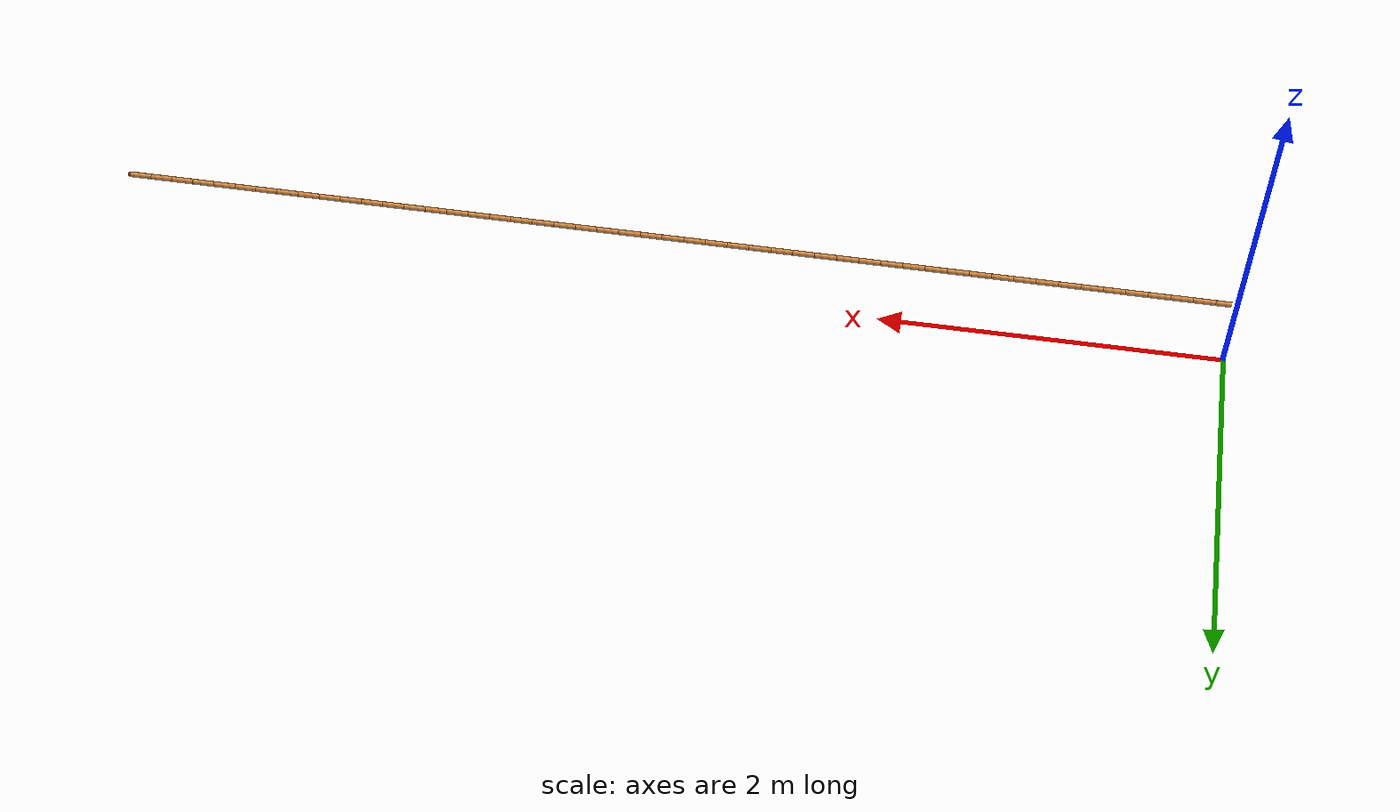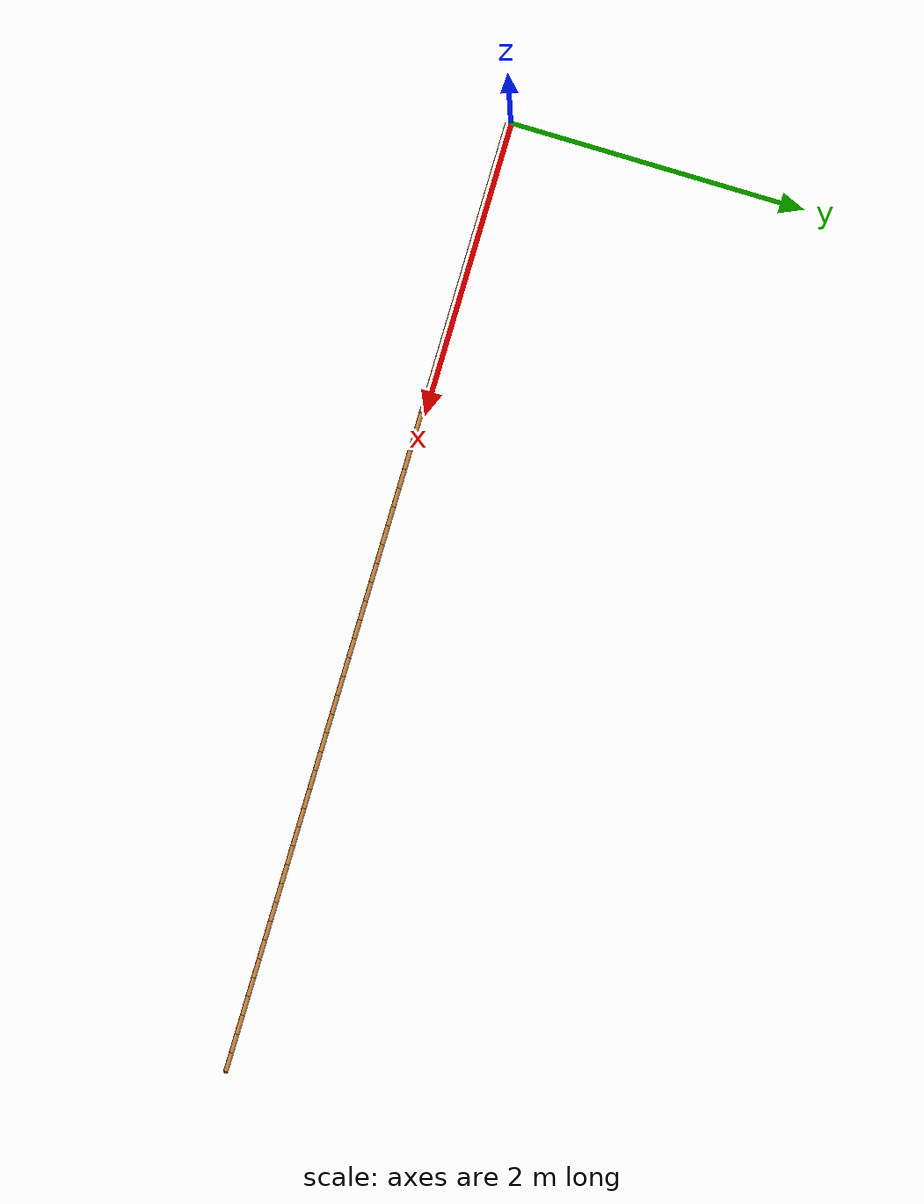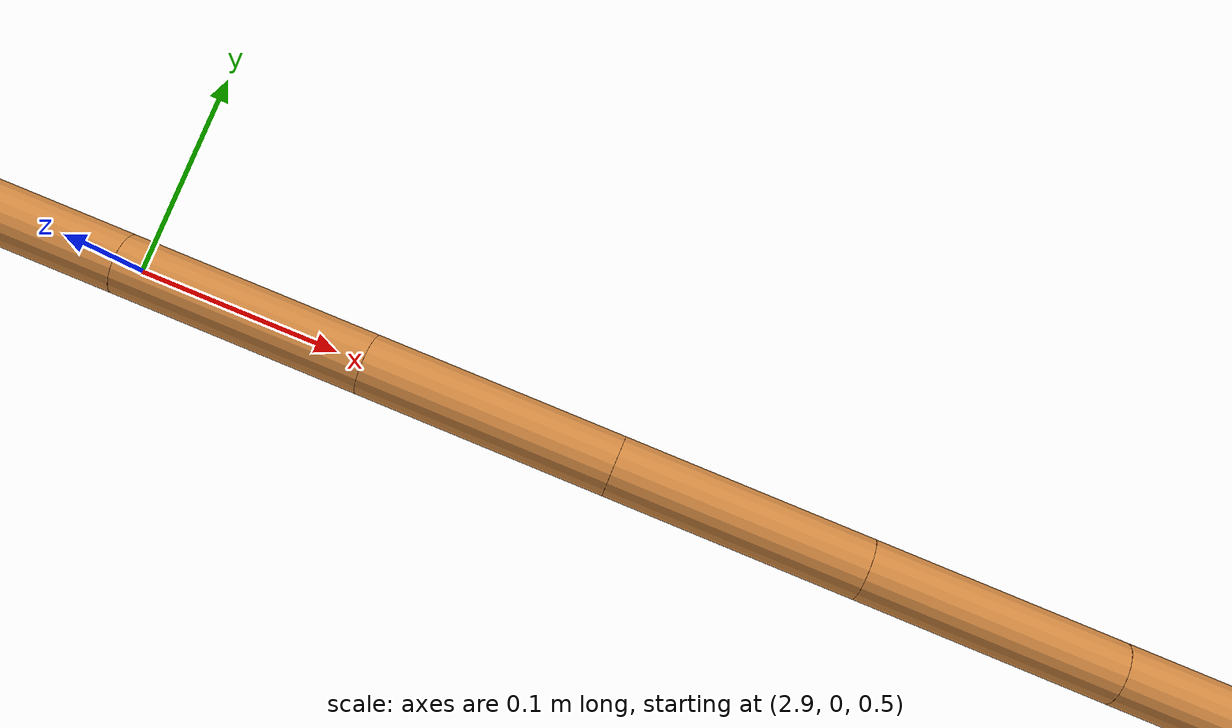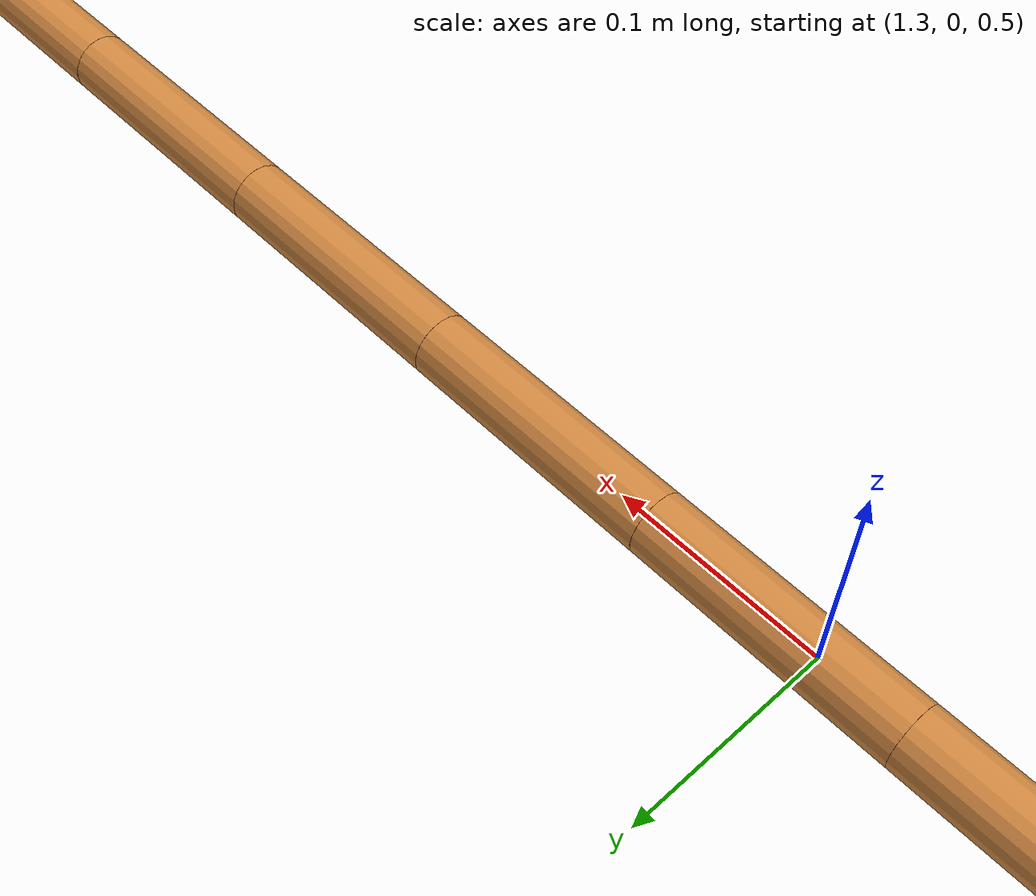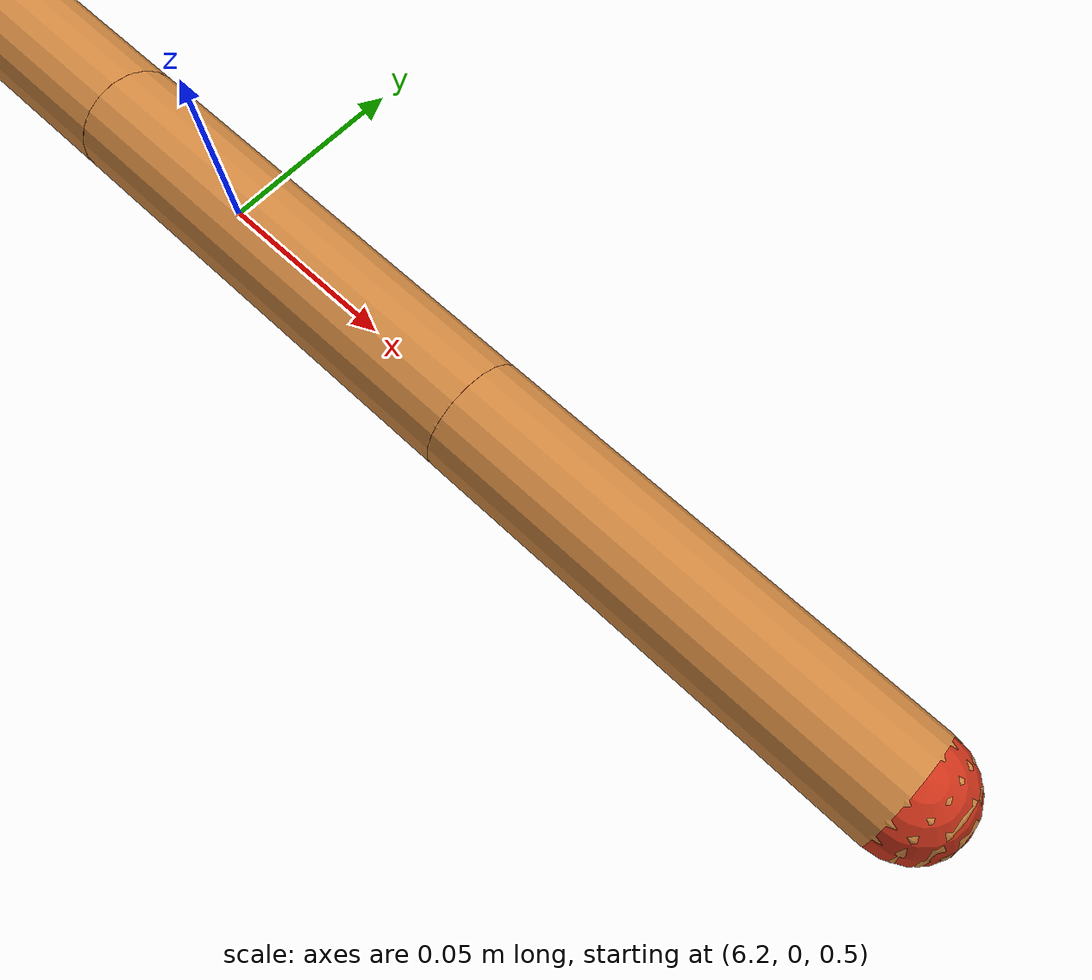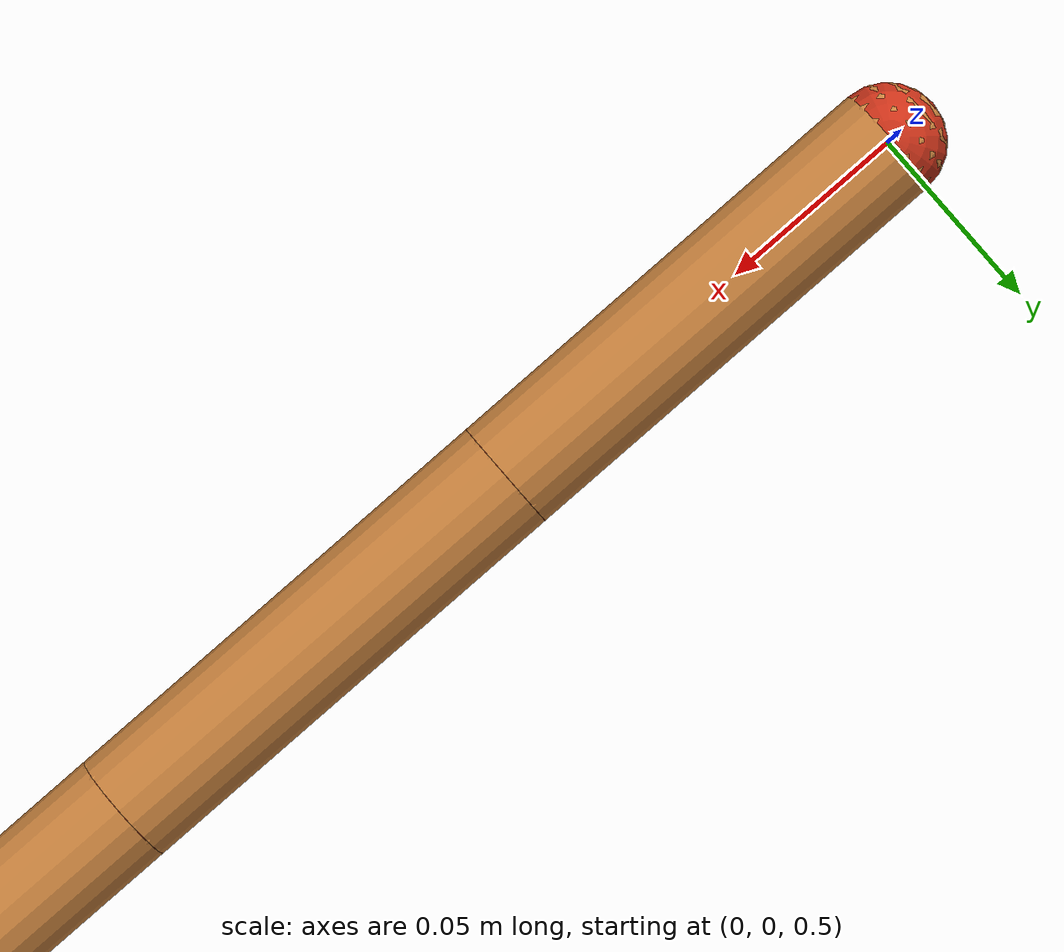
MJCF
<mujoco model="stiff-rope">
  <worldbody>
    <body name="stiffrope" pos="6.346017160251383 0.0 0.5" quat="1 0 0 0">
      <site name="ft_rope" pos="0 0 0" size="0.01 0.01 0.01" rgba="1 0 0 1" type="sphere" group="1" />
      <body name="r_joint0_body" pos="0.06283185307179587 0 0" quat="1.0 0.0 0.0 0.0">
        <site name="r_joint0_site" type="sphere" size="0.0001 0.0001 0.0001"/>
        <geom name="r_joint0_geom" conaffinity="0" contype="0" type="sphere" size="0.015 0.015 0.015" mass="0.02513274122871835" rgba=".8 .2 .1 1" friction="1 0.005 0.0001"/>
      </body>
      <body name="r_link1_body" pos="0.0 0 0" quat="1.0 0.0 0.0 0.0">
        <body name="r_joint1_body" pos="-0.06283185307179587 0 0">
          <site name="r_joint1_site" type="sphere" size="0.0001 0.0001 0.0001"/>
          <geom name="r_joint1_geom" conaffinity="0" contype="0" type="sphere" size="0.015 0.015 0.015" mass="0.02513274122871835" rgba=".8 .2 .1 1" friction="1 0.005 0.0001"/>
        </body>
        <geom name="r_link1_geom" quat="0.707 0. 0.707 0." type="capsule" size="0.0150 0.0628" mass="0.22619467105846514" rgba="0.803921568627451 0.5215686274509804 0.24705882352941178 1.0" friction="1 0.005 0.0001" solref="0.01 1" contype="1" conaffinity="1" condim="1"/>
        <site name="r_link1_site" type="sphere" size="0.0001 0.0001 0.0001"/>
      </body>
    </body>
    <body name="r_link2_body" pos="6.220353454107791 0.0 0.5" quat="1.0 0.0 0.0 0.0">
      <freejoint name="freejoint2"/>
      <body name="r_joint2_body" pos="-0.06283185307179587 0 0">
        <site name="r_joint2_site" type="sphere" size="0.0001 0.0001 0.0001"/>
        <geom name="r_joint2_geom" conaffinity="0" contype="0" type="sphere" size="0.015 0.015 0.015" mass="0.02513274122871835" rgba=".8 .2 .1 1" friction="1 0.005 0.0001"/>
      </body>
      <geom name="r_link2_geom" quat="0.707 0. 0.707 0." type="capsule" size="0.0150 0.0628" mass="0.22619467105846514" rgba="0.803921568627451 0.5215686274509804 0.24705882352941178 1.0" friction="1 0.005 0.0001" solref="0.01 1" contype="1" conaffinity="1" condim="1"/>
      <site name="r_link2_site" type="sphere" size="0.0001 0.0001 0.0001"/>
    </body>
    <body name="r_link3_body" pos="6.094689747964199 0.0 0.5" quat="1.0 0.0 0.0 0.0">
      <freejoint name="freejoint3"/>
      <body name="r_joint3_body" pos="-0.06283185307179587 0 0">
        <site name="r_joint3_site" type="sphere" size="0.0001 0.0001 0.0001"/>
        <geom name="r_joint3_geom" conaffinity="0" contype="0" type="sphere" size="0.015 0.015 0.015" mass="0.02513274122871835" rgba=".8 .2 .1 1" friction="1 0.005 0.0001"/>
      </body>
      <geom name="r_link3_geom" quat="0.707 0. 0.707 0." type="capsule" size="0.0150 0.0628" mass="0.22619467105846514" rgba="0.803921568627451 0.5215686274509804 0.24705882352941178 1.0" friction="1 0.005 0.0001" solref="0.01 1" contype="1" conaffinity="1" condim="1"/>
      <site name="r_link3_site" type="sphere" size="0.0001 0.0001 0.0001"/>
    </body>
    <body name="r_link4_body" pos="5.969026041820608 0.0 0.5" quat="1.0 0.0 0.0 0.0">
      <freejoint name="freejoint4"/>
      <body name="r_joint4_body" pos="-0.06283185307179587 0 0">
        <site name="r_joint4_site" type="sphere" size="0.0001 0.0001 0.0001"/>
        <geom name="r_joint4_geom" conaffinity="0" contype="0" type="sphere" size="0.015 0.015 0.015" mass="0.02513274122871835" rgba=".8 .2 .1 1" friction="1 0.005 0.0001"/>
      </body>
      <geom name="r_link4_geom" quat="0.707 0. 0.707 0." type="capsule" size="0.0150 0.0628" mass="0.22619467105846514" rgba="0.803921568627451 0.5215686274509804 0.24705882352941178 1.0" friction="1 0.005 0.0001" solref="0.01 1" contype="1" conaffinity="1" condim="1"/>
      <site name="r_link4_site" type="sphere" size="0.0001 0.0001 0.0001"/>
    </body>
    <body name="r_link5_body" pos="5.843362335677016 0.0 0.5" quat="1.0 0.0 0.0 0.0">
      <freejoint name="freejoint5"/>
      <body name="r_joint5_body" pos="-0.06283185307179587 0 0">
        <site name="r_joint5_site" type="sphere" size="0.0001 0.0001 0.0001"/>
        <geom name="r_joint5_geom" conaffinity="0" contype="0" type="sphere" size="0.015 0.015 0.015" mass="0.02513274122871835" rgba=".8 .2 .1 1" friction="1 0.005 0.0001"/>
      </body>
      <geom name="r_link5_geom" quat="0.707 0. 0.707 0." type="capsule" size="0.0150 0.0628" mass="0.22619467105846514" rgba="0.803921568627451 0.5215686274509804 0.24705882352941178 1.0" friction="1 0.005 0.0001" solref="0.01 1" contype="1" conaffinity="1" condim="1"/>
      <site name="r_link5_site" type="sphere" size="0.0001 0.0001 0.0001"/>
    </body>
    <body name="r_link6_body" pos="5.717698629533424 0.0 0.5" quat="1.0 0.0 0.0 0.0">
      <freejoint name="freejoint6"/>
      <body name="r_joint6_body" pos="-0.06283185307179587 0 0">
        <site name="r_joint6_site" type="sphere" size="0.0001 0.0001 0.0001"/>
        <geom name="r_joint6_geom" conaffinity="0" contype="0" type="sphere" size="0.015 0.015 0.015" mass="0.02513274122871835" rgba=".8 .2 .1 1" friction="1 0.005 0.0001"/>
      </body>
      <geom name="r_link6_geom" quat="0.707 0. 0.707 0." type="capsule" size="0.0150 0.0628" mass="0.22619467105846514" rgba="0.803921568627451 0.5215686274509804 0.24705882352941178 1.0" friction="1 0.005 0.0001" solref="0.01 1" contype="1" conaffinity="1" condim="1"/>
      <site name="r_link6_site" type="sphere" size="0.0001 0.0001 0.0001"/>
    </body>
    <body name="r_link7_body" pos="5.592034923389832 0.0 0.5" quat="1.0 0.0 0.0 0.0">
      <freejoint name="freejoint7"/>
      <body name="r_joint7_body" pos="-0.06283185307179587 0 0">
        <site name="r_joint7_site" type="sphere" size="0.0001 0.0001 0.0001"/>
        <geom name="r_joint7_geom" conaffinity="0" contype="0" type="sphere" size="0.015 0.015 0.015" mass="0.02513274122871835" rgba=".8 .2 .1 1" friction="1 0.005 0.0001"/>
      </body>
      <geom name="r_link7_geom" quat="0.707 0. 0.707 0." type="capsule" size="0.0150 0.0628" mass="0.22619467105846514" rgba="0.803921568627451 0.5215686274509804 0.24705882352941178 1.0" friction="1 0.005 0.0001" solref="0.01 1" contype="1" conaffinity="1" condim="1"/>
      <site name="r_link7_site" type="sphere" size="0.0001 0.0001 0.0001"/>
    </body>
    <body name="r_link8_body" pos="5.46637121724624 0.0 0.5" quat="1.0 0.0 0.0 0.0">
      <freejoint name="freejoint8"/>
      <body name="r_joint8_body" pos="-0.06283185307179587 0 0">
        <site name="r_joint8_site" type="sphere" size="0.0001 0.0001 0.0001"/>
        <geom name="r_joint8_geom" conaffinity="0" contype="0" type="sphere" size="0.015 0.015 0.015" mass="0.02513274122871835" rgba=".8 .2 .1 1" friction="1 0.005 0.0001"/>
      </body>
      <geom name="r_link8_geom" quat="0.707 0. 0.707 0." type="capsule" size="0.0150 0.0628" mass="0.22619467105846514" rgba="0.803921568627451 0.5215686274509804 0.24705882352941178 1.0" friction="1 0.005 0.0001" solref="0.01 1" contype="1" conaffinity="1" condim="1"/>
      <site name="r_link8_site" type="sphere" size="0.0001 0.0001 0.0001"/>
    </body>
    <body name="r_link9_body" pos="5.340707511102648 0.0 0.5" quat="1.0 0.0 0.0 0.0">
      <freejoint name="freejoint9"/>
      <body name="r_joint9_body" pos="-0.06283185307179587 0 0">
        <site name="r_joint9_site" type="sphere" size="0.0001 0.0001 0.0001"/>
        <geom name="r_joint9_geom" conaffinity="0" contype="0" type="sphere" size="0.015 0.015 0.015" mass="0.02513274122871835" rgba=".8 .2 .1 1" friction="1 0.005 0.0001"/>
      </body>
      <geom name="r_link9_geom" quat="0.707 0. 0.707 0." type="capsule" size="0.0150 0.0628" mass="0.22619467105846514" rgba="0.803921568627451 0.5215686274509804 0.24705882352941178 1.0" friction="1 0.005 0.0001" solref="0.01 1" contype="1" conaffinity="1" condim="1"/>
      <site name="r_link9_site" type="sphere" size="0.0001 0.0001 0.0001"/>
    </body>
    <body name="r_link10_body" pos="5.215043804959057 0.0 0.5" quat="1.0 0.0 0.0 0.0">
      <freejoint name="freejoint10"/>
      <body name="r_joint10_body" pos="-0.06283185307179587 0 0">
        <site name="r_joint10_site" type="sphere" size="0.0001 0.0001 0.0001"/>
        <geom name="r_joint10_geom" conaffinity="0" contype="0" type="sphere" size="0.015 0.015 0.015" mass="0.02513274122871835" rgba=".8 .2 .1 1" friction="1 0.005 0.0001"/>
      </body>
      <geom name="r_link10_geom" quat="0.707 0. 0.707 0." type="capsule" size="0.0150 0.0628" mass="0.22619467105846514" rgba="0.803921568627451 0.5215686274509804 0.24705882352941178 1.0" friction="1 0.005 0.0001" solref="0.01 1" contype="1" conaffinity="1" condim="1"/>
      <site name="r_link10_site" type="sphere" size="0.0001 0.0001 0.0001"/>
    </body>
    <body name="r_link11_body" pos="5.089380098815465 0.0 0.5" quat="1.0 0.0 0.0 0.0">
      <freejoint name="freejoint11"/>
      <body name="r_joint11_body" pos="-0.06283185307179587 0 0">
        <site name="r_joint11_site" type="sphere" size="0.0001 0.0001 0.0001"/>
        <geom name="r_joint11_geom" conaffinity="0" contype="0" type="sphere" size="0.015 0.015 0.015" mass="0.02513274122871835" rgba=".8 .2 .1 1" friction="1 0.005 0.0001"/>
      </body>
      <geom name="r_link11_geom" quat="0.707 0. 0.707 0." type="capsule" size="0.0150 0.0628" mass="0.22619467105846514" rgba="0.803921568627451 0.5215686274509804 0.24705882352941178 1.0" friction="1 0.005 0.0001" solref="0.01 1" contype="1" conaffinity="1" condim="1"/>
      <site name="r_link11_site" type="sphere" size="0.0001 0.0001 0.0001"/>
    </body>
    <body name="r_link12_body" pos="4.9637163926718735 0.0 0.5" quat="1.0 0.0 0.0 0.0">
      <freejoint name="freejoint12"/>
      <body name="r_joint12_body" pos="-0.06283185307179587 0 0">
        <site name="r_joint12_site" type="sphere" size="0.0001 0.0001 0.0001"/>
        <geom name="r_joint12_geom" conaffinity="0" contype="0" type="sphere" size="0.015 0.015 0.015" mass="0.02513274122871835" rgba=".8 .2 .1 1" friction="1 0.005 0.0001"/>
      </body>
      <geom name="r_link12_geom" quat="0.707 0. 0.707 0." type="capsule" size="0.0150 0.0628" mass="0.22619467105846514" rgba="0.803921568627451 0.5215686274509804 0.24705882352941178 1.0" friction="1 0.005 0.0001" solref="0.01 1" contype="1" conaffinity="1" condim="1"/>
      <site name="r_link12_site" type="sphere" size="0.0001 0.0001 0.0001"/>
    </body>
    <body name="r_link13_body" pos="4.838052686528282 0.0 0.5" quat="1.0 0.0 0.0 0.0">
      <freejoint name="freejoint13"/>
      <body name="r_joint13_body" pos="-0.06283185307179587 0 0">
        <site name="r_joint13_site" type="sphere" size="0.0001 0.0001 0.0001"/>
        <geom name="r_joint13_geom" conaffinity="0" contype="0" type="sphere" size="0.015 0.015 0.015" mass="0.02513274122871835" rgba=".8 .2 .1 1" friction="1 0.005 0.0001"/>
      </body>
      <geom name="r_link13_geom" quat="0.707 0. 0.707 0." type="capsule" size="0.0150 0.0628" mass="0.22619467105846514" rgba="0.803921568627451 0.5215686274509804 0.24705882352941178 1.0" friction="1 0.005 0.0001" solref="0.01 1" contype="1" conaffinity="1" condim="1"/>
      <site name="r_link13_site" type="sphere" size="0.0001 0.0001 0.0001"/>
    </body>
    <body name="r_link14_body" pos="4.71238898038469 0.0 0.5" quat="1.0 0.0 0.0 0.0">
      <freejoint name="freejoint14"/>
      <body name="r_joint14_body" pos="-0.06283185307179587 0 0">
        <site name="r_joint14_site" type="sphere" size="0.0001 0.0001 0.0001"/>
        <geom name="r_joint14_geom" conaffinity="0" contype="0" type="sphere" size="0.015 0.015 0.015" mass="0.02513274122871835" rgba=".8 .2 .1 1" friction="1 0.005 0.0001"/>
      </body>
      <geom name="r_link14_geom" quat="0.707 0. 0.707 0." type="capsule" size="0.0150 0.0628" mass="0.22619467105846514" rgba="0.803921568627451 0.5215686274509804 0.24705882352941178 1.0" friction="1 0.005 0.0001" solref="0.01 1" contype="1" conaffinity="1" condim="1"/>
      <site name="r_link14_site" type="sphere" size="0.0001 0.0001 0.0001"/>
    </body>
    <body name="r_link15_body" pos="4.586725274241099 0.0 0.5" quat="1.0 0.0 0.0 0.0">
      <freejoint name="freejoint15"/>
      <body name="r_joint15_body" pos="-0.06283185307179587 0 0">
        <site name="r_joint15_site" type="sphere" size="0.0001 0.0001 0.0001"/>
        <geom name="r_joint15_geom" conaffinity="0" contype="0" type="sphere" size="0.015 0.015 0.015" mass="0.02513274122871835" rgba=".8 .2 .1 1" friction="1 0.005 0.0001"/>
      </body>
      <geom name="r_link15_geom" quat="0.707 0. 0.707 0." type="capsule" size="0.0150 0.0628" mass="0.22619467105846514" rgba="0.803921568627451 0.5215686274509804 0.24705882352941178 1.0" friction="1 0.005 0.0001" solref="0.01 1" contype="1" conaffinity="1" condim="1"/>
      <site name="r_link15_site" type="sphere" size="0.0001 0.0001 0.0001"/>
    </body>
    <body name="r_link16_body" pos="4.461061568097507 0.0 0.5" quat="1.0 0.0 0.0 0.0">
      <freejoint name="freejoint16"/>
      <body name="r_joint16_body" pos="-0.06283185307179587 0 0">
        <site name="r_joint16_site" type="sphere" size="0.0001 0.0001 0.0001"/>
        <geom name="r_joint16_geom" conaffinity="0" contype="0" type="sphere" size="0.015 0.015 0.015" mass="0.02513274122871835" rgba=".8 .2 .1 1" friction="1 0.005 0.0001"/>
      </body>
      <geom name="r_link16_geom" quat="0.707 0. 0.707 0." type="capsule" size="0.0150 0.0628" mass="0.22619467105846514" rgba="0.803921568627451 0.5215686274509804 0.24705882352941178 1.0" friction="1 0.005 0.0001" solref="0.01 1" contype="1" conaffinity="1" condim="1"/>
      <site name="r_link16_site" type="sphere" size="0.0001 0.0001 0.0001"/>
    </body>
    <body name="r_link17_body" pos="4.335397861953915 0.0 0.5" quat="1.0 0.0 0.0 0.0">
      <freejoint name="freejoint17"/>
      <body name="r_joint17_body" pos="-0.06283185307179587 0 0">
        <site name="r_joint17_site" type="sphere" size="0.0001 0.0001 0.0001"/>
        <geom name="r_joint17_geom" conaffinity="0" contype="0" type="sphere" size="0.015 0.015 0.015" mass="0.02513274122871835" rgba=".8 .2 .1 1" friction="1 0.005 0.0001"/>
      </body>
      <geom name="r_link17_geom" quat="0.707 0. 0.707 0." type="capsule" size="0.0150 0.0628" mass="0.22619467105846514" rgba="0.803921568627451 0.5215686274509804 0.24705882352941178 1.0" friction="1 0.005 0.0001" solref="0.01 1" contype="1" conaffinity="1" condim="1"/>
      <site name="r_link17_site" type="sphere" size="0.0001 0.0001 0.0001"/>
    </body>
    <body name="r_link18_body" pos="4.209734155810323 0.0 0.5" quat="1.0 0.0 0.0 0.0">
      <freejoint name="freejoint18"/>
      <body name="r_joint18_body" pos="-0.06283185307179587 0 0">
        <site name="r_joint18_site" type="sphere" size="0.0001 0.0001 0.0001"/>
        <geom name="r_joint18_geom" conaffinity="0" contype="0" type="sphere" size="0.015 0.015 0.015" mass="0.02513274122871835" rgba=".8 .2 .1 1" friction="1 0.005 0.0001"/>
      </body>
      <geom name="r_link18_geom" quat="0.707 0. 0.707 0." type="capsule" size="0.0150 0.0628" mass="0.22619467105846514" rgba="0.803921568627451 0.5215686274509804 0.24705882352941178 1.0" friction="1 0.005 0.0001" solref="0.01 1" contype="1" conaffinity="1" condim="1"/>
      <site name="r_link18_site" type="sphere" size="0.0001 0.0001 0.0001"/>
    </body>
    <body name="r_link19_body" pos="4.084070449666731 0.0 0.5" quat="1.0 0.0 0.0 0.0">
      <freejoint name="freejoint19"/>
      <body name="r_joint19_body" pos="-0.06283185307179587 0 0">
        <site name="r_joint19_site" type="sphere" size="0.0001 0.0001 0.0001"/>
        <geom name="r_joint19_geom" conaffinity="0" contype="0" type="sphere" size="0.015 0.015 0.015" mass="0.02513274122871835" rgba=".8 .2 .1 1" friction="1 0.005 0.0001"/>
      </body>
      <geom name="r_link19_geom" quat="0.707 0. 0.707 0." type="capsule" size="0.0150 0.0628" mass="0.22619467105846514" rgba="0.803921568627451 0.5215686274509804 0.24705882352941178 1.0" friction="1 0.005 0.0001" solref="0.01 1" contype="1" conaffinity="1" condim="1"/>
      <site name="r_link19_site" type="sphere" size="0.0001 0.0001 0.0001"/>
    </body>
    <body name="r_link20_body" pos="3.9584067435231396 0.0 0.5" quat="1.0 0.0 0.0 0.0">
      <freejoint name="freejoint20"/>
      <body name="r_joint20_body" pos="-0.06283185307179587 0 0">
        <site name="r_joint20_site" type="sphere" size="0.0001 0.0001 0.0001"/>
        <geom name="r_joint20_geom" conaffinity="0" contype="0" type="sphere" size="0.015 0.015 0.015" mass="0.02513274122871835" rgba=".8 .2 .1 1" friction="1 0.005 0.0001"/>
      </body>
      <geom name="r_link20_geom" quat="0.707 0. 0.707 0." type="capsule" size="0.0150 0.0628" mass="0.22619467105846514" rgba="0.803921568627451 0.5215686274509804 0.24705882352941178 1.0" friction="1 0.005 0.0001" solref="0.01 1" contype="1" conaffinity="1" condim="1"/>
      <site name="r_link20_site" type="sphere" size="0.0001 0.0001 0.0001"/>
    </body>
    <body name="r_link21_body" pos="3.832743037379548 0.0 0.5" quat="1.0 0.0 0.0 0.0">
      <freejoint name="freejoint21"/>
      <body name="r_joint21_body" pos="-0.06283185307179587 0 0">
        <site name="r_joint21_site" type="sphere" size="0.0001 0.0001 0.0001"/>
        <geom name="r_joint21_geom" conaffinity="0" contype="0" type="sphere" size="0.015 0.015 0.015" mass="0.02513274122871835" rgba=".8 .2 .1 1" friction="1 0.005 0.0001"/>
      </body>
      <geom name="r_link21_geom" quat="0.707 0. 0.707 0." type="capsule" size="0.0150 0.0628" mass="0.22619467105846514" rgba="0.803921568627451 0.5215686274509804 0.24705882352941178 1.0" friction="1 0.005 0.0001" solref="0.01 1" contype="1" conaffinity="1" condim="1"/>
      <site name="r_link21_site" type="sphere" size="0.0001 0.0001 0.0001"/>
    </body>
    <body name="r_link22_body" pos="3.7070793312359562 0.0 0.5" quat="1.0 0.0 0.0 0.0">
      <freejoint name="freejoint22"/>
      <body name="r_joint22_body" pos="-0.06283185307179587 0 0">
        <site name="r_joint22_site" type="sphere" size="0.0001 0.0001 0.0001"/>
        <geom name="r_joint22_geom" conaffinity="0" contype="0" type="sphere" size="0.015 0.015 0.015" mass="0.02513274122871835" rgba=".8 .2 .1 1" friction="1 0.005 0.0001"/>
      </body>
      <geom name="r_link22_geom" quat="0.707 0. 0.707 0." type="capsule" size="0.0150 0.0628" mass="0.22619467105846514" rgba="0.803921568627451 0.5215686274509804 0.24705882352941178 1.0" friction="1 0.005 0.0001" solref="0.01 1" contype="1" conaffinity="1" condim="1"/>
      <site name="r_link22_site" type="sphere" size="0.0001 0.0001 0.0001"/>
    </body>
    <body name="r_link23_body" pos="3.5814156250923643 0.0 0.5" quat="1.0 0.0 0.0 0.0">
      <freejoint name="freejoint23"/>
      <body name="r_joint23_body" pos="-0.06283185307179587 0 0">
        <site name="r_joint23_site" type="sphere" size="0.0001 0.0001 0.0001"/>
        <geom name="r_joint23_geom" conaffinity="0" contype="0" type="sphere" size="0.015 0.015 0.015" mass="0.02513274122871835" rgba=".8 .2 .1 1" friction="1 0.005 0.0001"/>
      </body>
      <geom name="r_link23_geom" quat="0.707 0. 0.707 0." type="capsule" size="0.0150 0.0628" mass="0.22619467105846514" rgba="0.803921568627451 0.5215686274509804 0.24705882352941178 1.0" friction="1 0.005 0.0001" solref="0.01 1" contype="1" conaffinity="1" condim="1"/>
      <site name="r_link23_site" type="sphere" size="0.0001 0.0001 0.0001"/>
    </body>
    <body name="r_link24_body" pos="3.455751918948773 0.0 0.5" quat="1.0 0.0 0.0 0.0">
      <freejoint name="freejoint24"/>
      <body name="r_joint24_body" pos="-0.06283185307179587 0 0">
        <site name="r_joint24_site" type="sphere" size="0.0001 0.0001 0.0001"/>
        <geom name="r_joint24_geom" conaffinity="0" contype="0" type="sphere" size="0.015 0.015 0.015" mass="0.02513274122871835" rgba=".8 .2 .1 1" friction="1 0.005 0.0001"/>
      </body>
      <geom name="r_link24_geom" quat="0.707 0. 0.707 0." type="capsule" size="0.0150 0.0628" mass="0.22619467105846514" rgba="0.803921568627451 0.5215686274509804 0.24705882352941178 1.0" friction="1 0.005 0.0001" solref="0.01 1" contype="1" conaffinity="1" condim="1"/>
      <site name="r_link24_site" type="sphere" size="0.0001 0.0001 0.0001"/>
    </body>
    <body name="r_link25_body" pos="3.330088212805181 0.0 0.5" quat="1.0 0.0 0.0 0.0">
      <freejoint name="freejoint25"/>
      <body name="r_joint25_body" pos="-0.06283185307179587 0 0">
        <site name="r_joint25_site" type="sphere" size="0.0001 0.0001 0.0001"/>
        <geom name="r_joint25_geom" conaffinity="0" contype="0" type="sphere" size="0.015 0.015 0.015" mass="0.02513274122871835" rgba=".8 .2 .1 1" friction="1 0.005 0.0001"/>
      </body>
      <geom name="r_link25_geom" quat="0.707 0. 0.707 0." type="capsule" size="0.0150 0.0628" mass="0.22619467105846514" rgba="0.803921568627451 0.5215686274509804 0.24705882352941178 1.0" friction="1 0.005 0.0001" solref="0.01 1" contype="1" conaffinity="1" condim="1"/>
      <site name="r_link25_site" type="sphere" size="0.0001 0.0001 0.0001"/>
    </body>
    <body name="r_link26_body" pos="3.204424506661589 0.0 0.5" quat="1.0 0.0 0.0 0.0">
      <freejoint name="freejoint26"/>
      <body name="r_joint26_body" pos="-0.06283185307179587 0 0">
        <site name="r_joint26_site" type="sphere" size="0.0001 0.0001 0.0001"/>
        <geom name="r_joint26_geom" conaffinity="0" contype="0" type="sphere" size="0.015 0.015 0.015" mass="0.02513274122871835" rgba=".8 .2 .1 1" friction="1 0.005 0.0001"/>
      </body>
      <geom name="r_link26_geom" quat="0.707 0. 0.707 0." type="capsule" size="0.0150 0.0628" mass="0.22619467105846514" rgba="0.803921568627451 0.5215686274509804 0.24705882352941178 1.0" friction="1 0.005 0.0001" solref="0.01 1" contype="1" conaffinity="1" condim="1"/>
      <site name="r_link26_site" type="sphere" size="0.0001 0.0001 0.0001"/>
    </body>
    <body name="r_link27_body" pos="3.0787608005179976 0.0 0.5" quat="1.0 0.0 0.0 0.0">
      <freejoint name="freejoint27"/>
      <body name="r_joint27_body" pos="-0.06283185307179587 0 0">
        <site name="r_joint27_site" type="sphere" size="0.0001 0.0001 0.0001"/>
        <geom name="r_joint27_geom" conaffinity="0" contype="0" type="sphere" size="0.015 0.015 0.015" mass="0.02513274122871835" rgba=".8 .2 .1 1" friction="1 0.005 0.0001"/>
      </body>
      <geom name="r_link27_geom" quat="0.707 0. 0.707 0." type="capsule" size="0.0150 0.0628" mass="0.22619467105846514" rgba="0.803921568627451 0.5215686274509804 0.24705882352941178 1.0" friction="1 0.005 0.0001" solref="0.01 1" contype="1" conaffinity="1" condim="1"/>
      <site name="r_link27_site" type="sphere" size="0.0001 0.0001 0.0001"/>
    </body>
    <body name="r_link28_body" pos="2.9530970943744057 0.0 0.5" quat="1.0 0.0 0.0 0.0">
      <freejoint name="freejoint28"/>
      <body name="r_joint28_body" pos="-0.06283185307179587 0 0">
        <site name="r_joint28_site" type="sphere" size="0.0001 0.0001 0.0001"/>
        <geom name="r_joint28_geom" conaffinity="0" contype="0" type="sphere" size="0.015 0.015 0.015" mass="0.02513274122871835" rgba=".8 .2 .1 1" friction="1 0.005 0.0001"/>
      </body>
      <geom name="r_link28_geom" quat="0.707 0. 0.707 0." type="capsule" size="0.0150 0.0628" mass="0.22619467105846514" rgba="0.803921568627451 0.5215686274509804 0.24705882352941178 1.0" friction="1 0.005 0.0001" solref="0.01 1" contype="1" conaffinity="1" condim="1"/>
      <site name="r_link28_site" type="sphere" size="0.0001 0.0001 0.0001"/>
    </body>
    <body name="r_link29_body" pos="2.827433388230814 0.0 0.5" quat="1.0 0.0 0.0 0.0">
      <freejoint name="freejoint29"/>
      <body name="r_joint29_body" pos="-0.06283185307179587 0 0">
        <site name="r_joint29_site" type="sphere" size="0.0001 0.0001 0.0001"/>
        <geom name="r_joint29_geom" conaffinity="0" contype="0" type="sphere" size="0.015 0.015 0.015" mass="0.02513274122871835" rgba=".8 .2 .1 1" friction="1 0.005 0.0001"/>
      </body>
      <geom name="r_link29_geom" quat="0.707 0. 0.707 0." type="capsule" size="0.0150 0.0628" mass="0.22619467105846514" rgba="0.803921568627451 0.5215686274509804 0.24705882352941178 1.0" friction="1 0.005 0.0001" solref="0.01 1" contype="1" conaffinity="1" condim="1"/>
      <site name="r_link29_site" type="sphere" size="0.0001 0.0001 0.0001"/>
    </body>
    <body name="r_link30_body" pos="2.7017696820872223 0.0 0.5" quat="1.0 0.0 0.0 0.0">
      <freejoint name="freejoint30"/>
      <body name="r_joint30_body" pos="-0.06283185307179587 0 0">
        <site name="r_joint30_site" type="sphere" size="0.0001 0.0001 0.0001"/>
        <geom name="r_joint30_geom" conaffinity="0" contype="0" type="sphere" size="0.015 0.015 0.015" mass="0.02513274122871835" rgba=".8 .2 .1 1" friction="1 0.005 0.0001"/>
      </body>
      <geom name="r_link30_geom" quat="0.707 0. 0.707 0." type="capsule" size="0.0150 0.0628" mass="0.22619467105846514" rgba="0.803921568627451 0.5215686274509804 0.24705882352941178 1.0" friction="1 0.005 0.0001" solref="0.01 1" contype="1" conaffinity="1" condim="1"/>
      <site name="r_link30_site" type="sphere" size="0.0001 0.0001 0.0001"/>
    </body>
    <body name="r_link31_body" pos="2.5761059759436304 0.0 0.5" quat="1.0 0.0 0.0 0.0">
      <freejoint name="freejoint31"/>
      <body name="r_joint31_body" pos="-0.06283185307179587 0 0">
        <site name="r_joint31_site" type="sphere" size="0.0001 0.0001 0.0001"/>
        <geom name="r_joint31_geom" conaffinity="0" contype="0" type="sphere" size="0.015 0.015 0.015" mass="0.02513274122871835" rgba=".8 .2 .1 1" friction="1 0.005 0.0001"/>
      </body>
      <geom name="r_link31_geom" quat="0.707 0. 0.707 0." type="capsule" size="0.0150 0.0628" mass="0.22619467105846514" rgba="0.803921568627451 0.5215686274509804 0.24705882352941178 1.0" friction="1 0.005 0.0001" solref="0.01 1" contype="1" conaffinity="1" condim="1"/>
      <site name="r_link31_site" type="sphere" size="0.0001 0.0001 0.0001"/>
    </body>
    <body name="r_link32_body" pos="2.450442269800039 0.0 0.5" quat="1.0 0.0 0.0 0.0">
      <freejoint name="freejoint32"/>
      <body name="r_joint32_body" pos="-0.06283185307179587 0 0">
        <site name="r_joint32_site" type="sphere" size="0.0001 0.0001 0.0001"/>
        <geom name="r_joint32_geom" conaffinity="0" contype="0" type="sphere" size="0.015 0.015 0.015" mass="0.02513274122871835" rgba=".8 .2 .1 1" friction="1 0.005 0.0001"/>
      </body>
      <geom name="r_link32_geom" quat="0.707 0. 0.707 0." type="capsule" size="0.0150 0.0628" mass="0.22619467105846514" rgba="0.803921568627451 0.5215686274509804 0.24705882352941178 1.0" friction="1 0.005 0.0001" solref="0.01 1" contype="1" conaffinity="1" condim="1"/>
      <site name="r_link32_site" type="sphere" size="0.0001 0.0001 0.0001"/>
    </body>
    <body name="r_link33_body" pos="2.324778563656447 0.0 0.5" quat="1.0 0.0 0.0 0.0">
      <freejoint name="freejoint33"/>
      <body name="r_joint33_body" pos="-0.06283185307179587 0 0">
        <site name="r_joint33_site" type="sphere" size="0.0001 0.0001 0.0001"/>
        <geom name="r_joint33_geom" conaffinity="0" contype="0" type="sphere" size="0.015 0.015 0.015" mass="0.02513274122871835" rgba=".8 .2 .1 1" friction="1 0.005 0.0001"/>
      </body>
      <geom name="r_link33_geom" quat="0.707 0. 0.707 0." type="capsule" size="0.0150 0.0628" mass="0.22619467105846514" rgba="0.803921568627451 0.5215686274509804 0.24705882352941178 1.0" friction="1 0.005 0.0001" solref="0.01 1" contype="1" conaffinity="1" condim="1"/>
      <site name="r_link33_site" type="sphere" size="0.0001 0.0001 0.0001"/>
    </body>
    <body name="r_link34_body" pos="2.199114857512855 0.0 0.5" quat="1.0 0.0 0.0 0.0">
      <freejoint name="freejoint34"/>
      <body name="r_joint34_body" pos="-0.06283185307179587 0 0">
        <site name="r_joint34_site" type="sphere" size="0.0001 0.0001 0.0001"/>
        <geom name="r_joint34_geom" conaffinity="0" contype="0" type="sphere" size="0.015 0.015 0.015" mass="0.02513274122871835" rgba=".8 .2 .1 1" friction="1 0.005 0.0001"/>
      </body>
      <geom name="r_link34_geom" quat="0.707 0. 0.707 0." type="capsule" size="0.0150 0.0628" mass="0.22619467105846514" rgba="0.803921568627451 0.5215686274509804 0.24705882352941178 1.0" friction="1 0.005 0.0001" solref="0.01 1" contype="1" conaffinity="1" condim="1"/>
      <site name="r_link34_site" type="sphere" size="0.0001 0.0001 0.0001"/>
    </body>
    <body name="r_link35_body" pos="2.0734511513692633 0.0 0.5" quat="1.0 0.0 0.0 0.0">
      <freejoint name="freejoint35"/>
      <body name="r_joint35_body" pos="-0.06283185307179587 0 0">
        <site name="r_joint35_site" type="sphere" size="0.0001 0.0001 0.0001"/>
        <geom name="r_joint35_geom" conaffinity="0" contype="0" type="sphere" size="0.015 0.015 0.015" mass="0.02513274122871835" rgba=".8 .2 .1 1" friction="1 0.005 0.0001"/>
      </body>
      <geom name="r_link35_geom" quat="0.707 0. 0.707 0." type="capsule" size="0.0150 0.0628" mass="0.22619467105846514" rgba="0.803921568627451 0.5215686274509804 0.24705882352941178 1.0" friction="1 0.005 0.0001" solref="0.01 1" contype="1" conaffinity="1" condim="1"/>
      <site name="r_link35_site" type="sphere" size="0.0001 0.0001 0.0001"/>
    </body>
    <body name="r_link36_body" pos="1.9477874452256723 0.0 0.5" quat="1.0 0.0 0.0 0.0">
      <freejoint name="freejoint36"/>
      <body name="r_joint36_body" pos="-0.06283185307179587 0 0">
        <site name="r_joint36_site" type="sphere" size="0.0001 0.0001 0.0001"/>
        <geom name="r_joint36_geom" conaffinity="0" contype="0" type="sphere" size="0.015 0.015 0.015" mass="0.02513274122871835" rgba=".8 .2 .1 1" friction="1 0.005 0.0001"/>
      </body>
      <geom name="r_link36_geom" quat="0.707 0. 0.707 0." type="capsule" size="0.0150 0.0628" mass="0.22619467105846514" rgba="0.803921568627451 0.5215686274509804 0.24705882352941178 1.0" friction="1 0.005 0.0001" solref="0.01 1" contype="1" conaffinity="1" condim="1"/>
      <site name="r_link36_site" type="sphere" size="0.0001 0.0001 0.0001"/>
    </body>
    <body name="r_link37_body" pos="1.8221237390820804 0.0 0.5" quat="1.0 0.0 0.0 0.0">
      <freejoint name="freejoint37"/>
      <body name="r_joint37_body" pos="-0.06283185307179587 0 0">
        <site name="r_joint37_site" type="sphere" size="0.0001 0.0001 0.0001"/>
        <geom name="r_joint37_geom" conaffinity="0" contype="0" type="sphere" size="0.015 0.015 0.015" mass="0.02513274122871835" rgba=".8 .2 .1 1" friction="1 0.005 0.0001"/>
      </body>
      <geom name="r_link37_geom" quat="0.707 0. 0.707 0." type="capsule" size="0.0150 0.0628" mass="0.22619467105846514" rgba="0.803921568627451 0.5215686274509804 0.24705882352941178 1.0" friction="1 0.005 0.0001" solref="0.01 1" contype="1" conaffinity="1" condim="1"/>
      <site name="r_link37_site" type="sphere" size="0.0001 0.0001 0.0001"/>
    </body>
    <body name="r_link38_body" pos="1.6964600329384885 0.0 0.5" quat="1.0 0.0 0.0 0.0">
      <freejoint name="freejoint38"/>
      <body name="r_joint38_body" pos="-0.06283185307179587 0 0">
        <site name="r_joint38_site" type="sphere" size="0.0001 0.0001 0.0001"/>
        <geom name="r_joint38_geom" conaffinity="0" contype="0" type="sphere" size="0.015 0.015 0.015" mass="0.02513274122871835" rgba=".8 .2 .1 1" friction="1 0.005 0.0001"/>
      </body>
      <geom name="r_link38_geom" quat="0.707 0. 0.707 0." type="capsule" size="0.0150 0.0628" mass="0.22619467105846514" rgba="0.803921568627451 0.5215686274509804 0.24705882352941178 1.0" friction="1 0.005 0.0001" solref="0.01 1" contype="1" conaffinity="1" condim="1"/>
      <site name="r_link38_site" type="sphere" size="0.0001 0.0001 0.0001"/>
    </body>
    <body name="r_link39_body" pos="1.5707963267948966 0.0 0.5" quat="1.0 0.0 0.0 0.0">
      <freejoint name="freejoint39"/>
      <body name="r_joint39_body" pos="-0.06283185307179587 0 0">
        <site name="r_joint39_site" type="sphere" size="0.0001 0.0001 0.0001"/>
        <geom name="r_joint39_geom" conaffinity="0" contype="0" type="sphere" size="0.015 0.015 0.015" mass="0.02513274122871835" rgba=".8 .2 .1 1" friction="1 0.005 0.0001"/>
      </body>
      <geom name="r_link39_geom" quat="0.707 0. 0.707 0." type="capsule" size="0.0150 0.0628" mass="0.22619467105846514" rgba="0.803921568627451 0.5215686274509804 0.24705882352941178 1.0" friction="1 0.005 0.0001" solref="0.01 1" contype="1" conaffinity="1" condim="1"/>
      <site name="r_link39_site" type="sphere" size="0.0001 0.0001 0.0001"/>
    </body>
    <body name="r_link40_body" pos="1.4451326206513047 0.0 0.5" quat="1.0 0.0 0.0 0.0">
      <freejoint name="freejoint40"/>
      <body name="r_joint40_body" pos="-0.06283185307179587 0 0">
        <site name="r_joint40_site" type="sphere" size="0.0001 0.0001 0.0001"/>
        <geom name="r_joint40_geom" conaffinity="0" contype="0" type="sphere" size="0.015 0.015 0.015" mass="0.02513274122871835" rgba=".8 .2 .1 1" friction="1 0.005 0.0001"/>
      </body>
      <geom name="r_link40_geom" quat="0.707 0. 0.707 0." type="capsule" size="0.0150 0.0628" mass="0.22619467105846514" rgba="0.803921568627451 0.5215686274509804 0.24705882352941178 1.0" friction="1 0.005 0.0001" solref="0.01 1" contype="1" conaffinity="1" condim="1"/>
      <site name="r_link40_site" type="sphere" size="0.0001 0.0001 0.0001"/>
    </body>
    <body name="r_link41_body" pos="1.3194689145077136 0.0 0.5" quat="1.0 0.0 0.0 0.0">
      <freejoint name="freejoint41"/>
      <body name="r_joint41_body" pos="-0.06283185307179587 0 0">
        <site name="r_joint41_site" type="sphere" size="0.0001 0.0001 0.0001"/>
        <geom name="r_joint41_geom" conaffinity="0" contype="0" type="sphere" size="0.015 0.015 0.015" mass="0.02513274122871835" rgba=".8 .2 .1 1" friction="1 0.005 0.0001"/>
      </body>
      <geom name="r_link41_geom" quat="0.707 0. 0.707 0." type="capsule" size="0.0150 0.0628" mass="0.22619467105846514" rgba="0.803921568627451 0.5215686274509804 0.24705882352941178 1.0" friction="1 0.005 0.0001" solref="0.01 1" contype="1" conaffinity="1" condim="1"/>
      <site name="r_link41_site" type="sphere" size="0.0001 0.0001 0.0001"/>
    </body>
    <body name="r_link42_body" pos="1.1938052083641217 0.0 0.5" quat="1.0 0.0 0.0 0.0">
      <freejoint name="freejoint42"/>
      <body name="r_joint42_body" pos="-0.06283185307179587 0 0">
        <site name="r_joint42_site" type="sphere" size="0.0001 0.0001 0.0001"/>
        <geom name="r_joint42_geom" conaffinity="0" contype="0" type="sphere" size="0.015 0.015 0.015" mass="0.02513274122871835" rgba=".8 .2 .1 1" friction="1 0.005 0.0001"/>
      </body>
      <geom name="r_link42_geom" quat="0.707 0. 0.707 0." type="capsule" size="0.0150 0.0628" mass="0.22619467105846514" rgba="0.803921568627451 0.5215686274509804 0.24705882352941178 1.0" friction="1 0.005 0.0001" solref="0.01 1" contype="1" conaffinity="1" condim="1"/>
      <site name="r_link42_site" type="sphere" size="0.0001 0.0001 0.0001"/>
    </body>
    <body name="r_link43_body" pos="1.0681415022205298 0.0 0.5" quat="1.0 0.0 0.0 0.0">
      <freejoint name="freejoint43"/>
      <body name="r_joint43_body" pos="-0.06283185307179587 0 0">
        <site name="r_joint43_site" type="sphere" size="0.0001 0.0001 0.0001"/>
        <geom name="r_joint43_geom" conaffinity="0" contype="0" type="sphere" size="0.015 0.015 0.015" mass="0.02513274122871835" rgba=".8 .2 .1 1" friction="1 0.005 0.0001"/>
      </body>
      <geom name="r_link43_geom" quat="0.707 0. 0.707 0." type="capsule" size="0.0150 0.0628" mass="0.22619467105846514" rgba="0.803921568627451 0.5215686274509804 0.24705882352941178 1.0" friction="1 0.005 0.0001" solref="0.01 1" contype="1" conaffinity="1" condim="1"/>
      <site name="r_link43_site" type="sphere" size="0.0001 0.0001 0.0001"/>
    </body>
    <body name="r_link44_body" pos="0.9424777960769379 0.0 0.5" quat="1.0 0.0 0.0 0.0">
      <freejoint name="freejoint44"/>
      <body name="r_joint44_body" pos="-0.06283185307179587 0 0">
        <site name="r_joint44_site" type="sphere" size="0.0001 0.0001 0.0001"/>
        <geom name="r_joint44_geom" conaffinity="0" contype="0" type="sphere" size="0.015 0.015 0.015" mass="0.02513274122871835" rgba=".8 .2 .1 1" friction="1 0.005 0.0001"/>
      </body>
      <geom name="r_link44_geom" quat="0.707 0. 0.707 0." type="capsule" size="0.0150 0.0628" mass="0.22619467105846514" rgba="0.803921568627451 0.5215686274509804 0.24705882352941178 1.0" friction="1 0.005 0.0001" solref="0.01 1" contype="1" conaffinity="1" condim="1"/>
      <site name="r_link44_site" type="sphere" size="0.0001 0.0001 0.0001"/>
    </body>
    <body name="r_link45_body" pos="0.816814089933346 0.0 0.5" quat="1.0 0.0 0.0 0.0">
      <freejoint name="freejoint45"/>
      <body name="r_joint45_body" pos="-0.06283185307179587 0 0">
        <site name="r_joint45_site" type="sphere" size="0.0001 0.0001 0.0001"/>
        <geom name="r_joint45_geom" conaffinity="0" contype="0" type="sphere" size="0.015 0.015 0.015" mass="0.02513274122871835" rgba=".8 .2 .1 1" friction="1 0.005 0.0001"/>
      </body>
      <geom name="r_link45_geom" quat="0.707 0. 0.707 0." type="capsule" size="0.0150 0.0628" mass="0.22619467105846514" rgba="0.803921568627451 0.5215686274509804 0.24705882352941178 1.0" friction="1 0.005 0.0001" solref="0.01 1" contype="1" conaffinity="1" condim="1"/>
      <site name="r_link45_site" type="sphere" size="0.0001 0.0001 0.0001"/>
    </body>
    <body name="r_link46_body" pos="0.6911503837897541 0.0 0.5" quat="1.0 0.0 0.0 0.0">
      <freejoint name="freejoint46"/>
      <body name="r_joint46_body" pos="-0.06283185307179587 0 0">
        <site name="r_joint46_site" type="sphere" size="0.0001 0.0001 0.0001"/>
        <geom name="r_joint46_geom" conaffinity="0" contype="0" type="sphere" size="0.015 0.015 0.015" mass="0.02513274122871835" rgba=".8 .2 .1 1" friction="1 0.005 0.0001"/>
      </body>
      <geom name="r_link46_geom" quat="0.707 0. 0.707 0." type="capsule" size="0.0150 0.0628" mass="0.22619467105846514" rgba="0.803921568627451 0.5215686274509804 0.24705882352941178 1.0" friction="1 0.005 0.0001" solref="0.01 1" contype="1" conaffinity="1" condim="1"/>
      <site name="r_link46_site" type="sphere" size="0.0001 0.0001 0.0001"/>
    </body>
    <body name="r_link47_body" pos="0.5654866776461631 0.0 0.5" quat="1.0 0.0 0.0 0.0">
      <freejoint name="freejoint47"/>
      <body name="r_joint47_body" pos="-0.06283185307179587 0 0">
        <site name="r_joint47_site" type="sphere" size="0.0001 0.0001 0.0001"/>
        <geom name="r_joint47_geom" conaffinity="0" contype="0" type="sphere" size="0.015 0.015 0.015" mass="0.02513274122871835" rgba=".8 .2 .1 1" friction="1 0.005 0.0001"/>
      </body>
      <geom name="r_link47_geom" quat="0.707 0. 0.707 0." type="capsule" size="0.0150 0.0628" mass="0.22619467105846514" rgba="0.803921568627451 0.5215686274509804 0.24705882352941178 1.0" friction="1 0.005 0.0001" solref="0.01 1" contype="1" conaffinity="1" condim="1"/>
      <site name="r_link47_site" type="sphere" size="0.0001 0.0001 0.0001"/>
    </body>
    <body name="r_link48_body" pos="0.4398229715025712 0.0 0.5" quat="1.0 0.0 0.0 0.0">
      <freejoint name="freejoint48"/>
      <body name="r_joint48_body" pos="-0.06283185307179587 0 0">
        <site name="r_joint48_site" type="sphere" size="0.0001 0.0001 0.0001"/>
        <geom name="r_joint48_geom" conaffinity="0" contype="0" type="sphere" size="0.015 0.015 0.015" mass="0.02513274122871835" rgba=".8 .2 .1 1" friction="1 0.005 0.0001"/>
      </body>
      <geom name="r_link48_geom" quat="0.707 0. 0.707 0." type="capsule" size="0.0150 0.0628" mass="0.22619467105846514" rgba="0.803921568627451 0.5215686274509804 0.24705882352941178 1.0" friction="1 0.005 0.0001" solref="0.01 1" contype="1" conaffinity="1" condim="1"/>
      <site name="r_link48_site" type="sphere" size="0.0001 0.0001 0.0001"/>
    </body>
    <body name="r_link49_body" pos="0.3141592653589793 0.0 0.5" quat="1.0 0.0 0.0 0.0">
      <freejoint name="freejoint49"/>
      <body name="r_joint49_body" pos="-0.06283185307179587 0 0">
        <site name="r_joint49_site" type="sphere" size="0.0001 0.0001 0.0001"/>
        <geom name="r_joint49_geom" conaffinity="0" contype="0" type="sphere" size="0.015 0.015 0.015" mass="0.02513274122871835" rgba=".8 .2 .1 1" friction="1 0.005 0.0001"/>
      </body>
      <geom name="r_link49_geom" quat="0.707 0. 0.707 0." type="capsule" size="0.0150 0.0628" mass="0.22619467105846514" rgba="0.803921568627451 0.5215686274509804 0.24705882352941178 1.0" friction="1 0.005 0.0001" solref="0.01 1" contype="1" conaffinity="1" condim="1"/>
      <site name="r_link49_site" type="sphere" size="0.0001 0.0001 0.0001"/>
    </body>
    <body name="r_link50_body" pos="0.1884955592153874 0.0 0.5" quat="1.0 0.0 0.0 0.0">
      <freejoint name="freejoint50"/>
      <body name="r_joint50_body" pos="-0.06283185307179587 0 0">
        <site name="r_joint50_site" type="sphere" size="0.0001 0.0001 0.0001"/>
        <geom name="r_joint50_geom" conaffinity="0" contype="0" type="sphere" size="0.015 0.015 0.015" mass="0.02513274122871835" rgba=".8 .2 .1 1" friction="1 0.005 0.0001"/>
      </body>
      <geom name="r_link50_geom" quat="0.707 0. 0.707 0." type="capsule" size="0.0150 0.0628" mass="0.22619467105846514" rgba="0.803921568627451 0.5215686274509804 0.24705882352941178 1.0" friction="1 0.005 0.0001" solref="0.01 1" contype="1" conaffinity="1" condim="1"/>
      <site name="r_link50_site" type="sphere" size="0.0001 0.0001 0.0001"/>
    </body>
    <body name="r_link51_body" pos="0.06283185307179551 0.0 0.5" quat="1.0 0.0 0.0 0.0">
      <freejoint name="freejoint51"/>
      <body name="r_joint51_body" pos="-0.06283185307179587 0 0">
        <site name="r_joint51_site" type="sphere" size="0.0001 0.0001 0.0001"/>
        <geom name="r_joint51_geom" conaffinity="0" contype="0" type="sphere" size="0.015 0.015 0.015" mass="0.02513274122871835" rgba=".8 .2 .1 1" friction="1 0.005 0.0001"/>
      </body>
      <geom name="r_link51_geom" quat="0.707 0. 0.707 0." type="capsule" size="0.0150 0.0628" mass="0.22619467105846514" rgba="0.803921568627451 0.5215686274509804 0.24705882352941178 1.0" friction="1 0.005 0.0001" solref="0.01 1" contype="1" conaffinity="1" condim="1"/>
      <site name="r_link51_site" type="sphere" size="0.0001 0.0001 0.0001"/>
    </body>
  </worldbody>
  <sensor>
  </sensor>
</mujoco>
